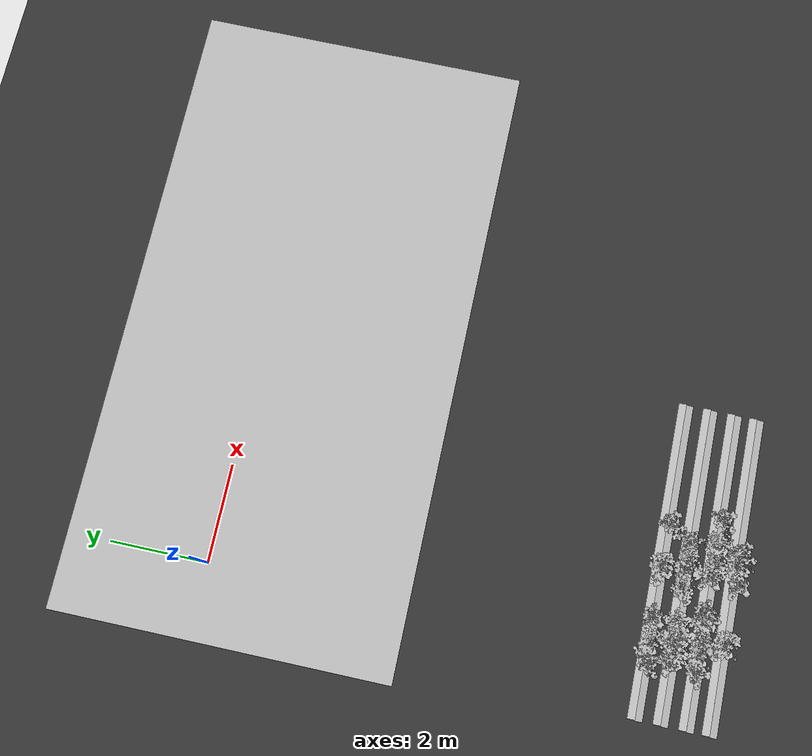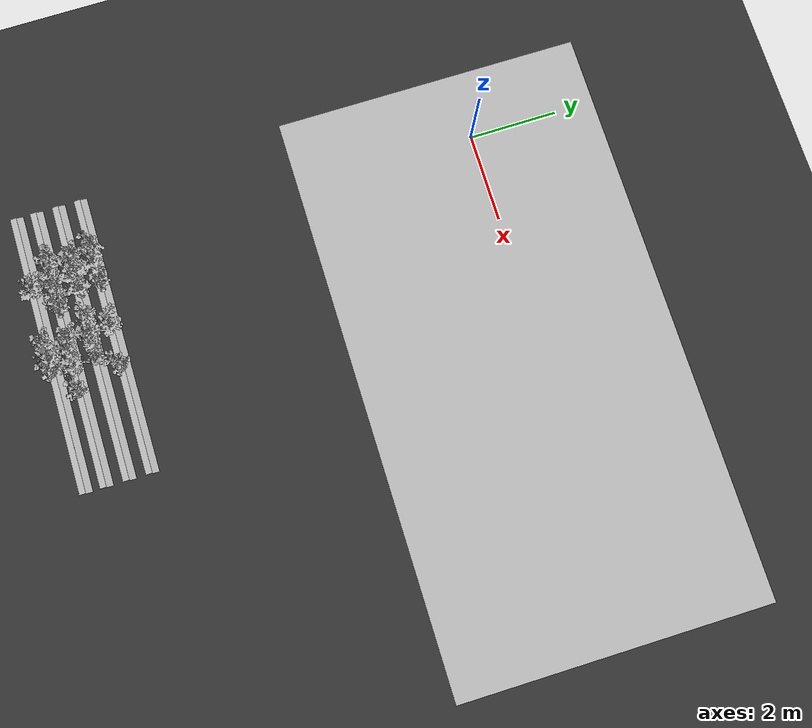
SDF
<sdf version="1.7">
 <world name="default">
  <model name="ground_plane">
   <static>1</static>
   <link name="link">
    <collision name="collision">
     <geometry><plane><normal>0 0 1</normal><size>100 100</size></plane></geometry>
     <surface>
      <contact><collide_bitmask>65535</collide_bitmask></contact>
      <friction><ode><mu>100</mu><mu2>50</mu2></ode></friction>
     </surface>
    </collision>
    <visual name="visual">
     <cast_shadows>0</cast_shadows>
     <geometry><plane><normal>0 0 1</normal><size>100 100</size></plane></geometry>
     <material>
      <ambient>0.2 0.2 0.2 1.0</ambient>
      <diffuse>0.2 0.2 0.2 1.0</diffuse>
      <specular>0.2 0.2 0.2 1.0</specular>
      <emissive>0.2 0.2 0.2 1.0</emissive>
     </material>
    </visual>
   </link>
  </model>
  <model name="ground">
   <pose>5 -0.5 0.01  3.141592654 0 0</pose>
   <static>true</static>
   <link name="body">
    <visual name="visual">
     <cast_shadows>0</cast_shadows>
     <geometry>
      <mesh><uri>file:///home/ifcosta/catkin_ws/src/cnn_line/worlds/models/ground.obj</uri></mesh>
     </geometry>
    </visual>
   </link>
  </model>
  <model name="plt_30002">
   <pose>0.57 -10.2 0.0132 0.0 0.0 -0.59547</pose>
   <static>true</static>
   <link name="body">
    <visual name="visual">
     <geometry>
      <mesh><uri>file:///home/ifcosta/catkin_ws/src/cnn_line/worlds/models/plant30.obj</uri></mesh>
     </geometry>
    </visual>
   </link>
  </model>
  <model name="plt_30006">
   <pose>1.82 -10.3 0.0144 0.0 0.0 0.010769</pose>
   <static>true</static>
   <link name="body">
    <visual name="visual">
     <geometry>
      <mesh><uri>file:///home/ifcosta/catkin_ws/src/cnn_line/worlds/models/plant33.obj</uri></mesh>
     </geometry>
    </visual>
   </link>
  </model>
  <model name="plt_30007">
   <pose>2.12 -10.2 0.0155 0.0 0.0 0.10091</pose>
   <static>true</static>
   <link name="body">
    <visual name="visual">
     <geometry>
      <mesh><uri>file:///home/ifcosta/catkin_ws/src/cnn_line/worlds/models/plant30.obj</uri></mesh>
     </geometry>
    </visual>
   </link>
  </model>
  <model name="plt_30008">
   <pose>2.41 -10.2 0.0153 0.0 0.0 1.6546</pose>
   <static>true</static>
   <link name="body">
    <visual name="visual">
     <geometry>
      <mesh><uri>file:///home/ifcosta/catkin_ws/src/cnn_line/worlds/models/plant33.obj</uri></mesh>
     </geometry>
    </visual>
   </link>
  </model>
  <model name="slope_1434">
   <pose>2.0 -10.2 -0.005 0.0 0.0 0.0</pose>
   <static>true</static>
   <link name="body">
    <visual name="visual">
     <geometry>
      <mesh><uri>file:///home/ifcosta/catkin_ws/src/cnn_line/worlds/models/slope.obj</uri></mesh>
     </geometry>
    </visual>
   </link>
  </model>
  <model name="slope_1534">
   <pose>2.0 -10.2 -0.005 0.0 0.0 3.1416</pose>
   <static>true</static>
   <link name="body">
    <visual name="visual">
     <geometry>
      <mesh><uri>file:///home/ifcosta/catkin_ws/src/cnn_line/worlds/models/slope.obj</uri></mesh>
     </geometry>
    </visual>
   </link>
  </model>
  <model name="plt_30034">
   <pose>0.0405 -9.73 0.0151 0.0 0.0 -1.1142</pose>
   <static>true</static>
   <link name="body">
    <visual name="visual">
     <geometry>
      <mesh><uri>file:///home/ifcosta/catkin_ws/src/cnn_line/worlds/models/plant34.obj</uri></mesh>
     </geometry>
    </visual>
   </link>
  </model>
  <model name="plt_30035">
   <pose>0.297 -9.74 0.019 0.0 0.0 0.044568</pose>
   <static>true</static>
   <link name="body">
    <visual name="visual">
     <geometry>
      <mesh><uri>file:///home/ifcosta/catkin_ws/src/cnn_line/worlds/models/plant36.obj</uri></mesh>
     </geometry>
    </visual>
   </link>
  </model>
  <model name="plt_30036">
   <pose>0.611 -9.71 0.0138 0.0 0.0 0.39784</pose>
   <static>true</static>
   <link name="body">
    <visual name="visual">
     <geometry>
      <mesh><uri>file:///home/ifcosta/catkin_ws/src/cnn_line/worlds/models/plant34.obj</uri></mesh>
     </geometry>
    </visual>
   </link>
  </model>
  <model name="plt_30037">
   <pose>0.934 -9.77 0.0124 0.0 0.0 -0.94922</pose>
   <static>true</static>
   <link name="body">
    <visual name="visual">
     <geometry>
      <mesh><uri>file:///home/ifcosta/catkin_ws/src/cnn_line/worlds/models/plant35.obj</uri></mesh>
     </geometry>
    </visual>
   </link>
  </model>
  <model name="plt_30038">
   <pose>1.16 -9.74 0.014 0.0 0.0 -1.868</pose>
   <static>true</static>
   <link name="body">
    <visual name="visual">
     <geometry>
      <mesh><uri>file:///home/ifcosta/catkin_ws/src/cnn_line/worlds/models/plant34.obj</uri></mesh>
     </geometry>
    </visual>
   </link>
  </model>
  <model name="plt_30040">
   <pose>1.84 -9.77 0.0124 0.0 0.0 -0.25344</pose>
   <static>true</static>
   <link name="body">
    <visual name="visual">
     <geometry>
      <mesh><uri>file:///home/ifcosta/catkin_ws/src/cnn_line/worlds/models/plant33.obj</uri></mesh>
     </geometry>
    </visual>
   </link>
  </model>
  <model name="plt_30041">
   <pose>2.08 -9.81 0.0134 0.0 0.0 0.042415</pose>
   <static>true</static>
   <link name="body">
    <visual name="visual">
     <geometry>
      <mesh><uri>file:///home/ifcosta/catkin_ws/src/cnn_line/worlds/models/plant31.obj</uri></mesh>
     </geometry>
    </visual>
   </link>
  </model>
  <model name="plt_30042">
   <pose>2.44 -9.77 0.0154 0.0 0.0 -0.043431</pose>
   <static>true</static>
   <link name="body">
    <visual name="visual">
     <geometry>
      <mesh><uri>file:///home/ifcosta/catkin_ws/src/cnn_line/worlds/models/plant32.obj</uri></mesh>
     </geometry>
    </visual>
   </link>
  </model>
  <model name="plt_30044">
   <pose>3.02 -9.76 0.0167 0.0 0.0 -0.41512</pose>
   <static>true</static>
   <link name="body">
    <visual name="visual">
     <geometry>
      <mesh><uri>file:///home/ifcosta/catkin_ws/src/cnn_line/worlds/models/plant34.obj</uri></mesh>
     </geometry>
    </visual>
   </link>
  </model>
  <model name="slope_1468">
   <pose>2.0 -9.75 -0.005 0.0 0.0 0.0</pose>
   <static>true</static>
   <link name="body">
    <visual name="visual">
     <geometry>
      <mesh><uri>file:///home/ifcosta/catkin_ws/src/cnn_line/worlds/models/slope.obj</uri></mesh>
     </geometry>
    </visual>
   </link>
  </model>
  <model name="slope_1568">
   <pose>2.0 -9.75 -0.005 0.0 0.0 3.1416</pose>
   <static>true</static>
   <link name="body">
    <visual name="visual">
     <geometry>
      <mesh><uri>file:///home/ifcosta/catkin_ws/src/cnn_line/worlds/models/slope.obj</uri></mesh>
     </geometry>
    </visual>
   </link>
  </model>
  <model name="plt_30068">
   <pose>0.0357 -9.23 0.0153 0.0 0.0 -1.1331</pose>
   <static>true</static>
   <link name="body">
    <visual name="visual">
     <geometry>
      <mesh><uri>file:///home/ifcosta/catkin_ws/src/cnn_line/worlds/models/plant33.obj</uri></mesh>
     </geometry>
    </visual>
   </link>
  </model>
  <model name="plt_30069">
   <pose>0.307 -9.26 0.015 0.0 0.0 0.32687</pose>
   <static>true</static>
   <link name="body">
    <visual name="visual">
     <geometry>
      <mesh><uri>file:///home/ifcosta/catkin_ws/src/cnn_line/worlds/models/plant30.obj</uri></mesh>
     </geometry>
    </visual>
   </link>
  </model>
  <model name="plt_30070">
   <pose>0.559 -9.24 0.0151 0.0 0.0 1.7752</pose>
   <static>true</static>
   <link name="body">
    <visual name="visual">
     <geometry>
      <mesh><uri>file:///home/ifcosta/catkin_ws/src/cnn_line/worlds/models/plant30.obj</uri></mesh>
     </geometry>
    </visual>
   </link>
  </model>
  <model name="plt_30071">
   <pose>0.858 -9.2 0.0126 0.0 0.0 1.2072</pose>
   <static>true</static>
   <link name="body">
    <visual name="visual">
     <geometry>
      <mesh><uri>file:///home/ifcosta/catkin_ws/src/cnn_line/worlds/models/plant31.obj</uri></mesh>
     </geometry>
    </visual>
   </link>
  </model>
  <model name="plt_30073">
   <pose>1.47 -9.22 0.0157 0.0 0.0 0.015678</pose>
   <static>true</static>
   <link name="body">
    <visual name="visual">
     <geometry>
      <mesh><uri>file:///home/ifcosta/catkin_ws/src/cnn_line/worlds/models/plant31.obj</uri></mesh>
     </geometry>
    </visual>
   </link>
  </model>
  <model name="plt_30074">
   <pose>1.83 -9.24 0.0153 0.0 0.0 -0.87403</pose>
   <static>true</static>
   <link name="body">
    <visual name="visual">
     <geometry>
      <mesh><uri>file:///home/ifcosta/catkin_ws/src/cnn_line/worlds/models/plant36.obj</uri></mesh>
     </geometry>
    </visual>
   </link>
  </model>
  <model name="plt_30075">
   <pose>2.05 -9.25 0.0147 0.0 0.0 -0.89679</pose>
   <static>true</static>
   <link name="body">
    <visual name="visual">
     <geometry>
      <mesh><uri>file:///home/ifcosta/catkin_ws/src/cnn_line/worlds/models/plant31.obj</uri></mesh>
     </geometry>
    </visual>
   </link>
  </model>
  <model name="plt_30076">
   <pose>2.4 -9.26 0.012 0.0 0.0 -1.2348</pose>
   <static>true</static>
   <link name="body">
    <visual name="visual">
     <geometry>
      <mesh><uri>file:///home/ifcosta/catkin_ws/src/cnn_line/worlds/models/plant33.obj</uri></mesh>
     </geometry>
    </visual>
   </link>
  </model>
  <model name="slope_1502">
   <pose>2.0 -9.25 -0.005 0.0 0.0 0.0</pose>
   <static>true</static>
   <link name="body">
    <visual name="visual">
     <geometry>
      <mesh><uri>file:///home/ifcosta/catkin_ws/src/cnn_line/worlds/models/slope.obj</uri></mesh>
     </geometry>
    </visual>
   </link>
  </model>
  <model name="slope_1602">
   <pose>2.0 -9.25 -0.005 0.0 0.0 3.1416</pose>
   <static>true</static>
   <link name="body">
    <visual name="visual">
     <geometry>
      <mesh><uri>file:///home/ifcosta/catkin_ws/src/cnn_line/worlds/models/slope.obj</uri></mesh>
     </geometry>
    </visual>
   </link>
  </model>
  <model name="plt_30102">
   <pose>-0.0036 -8.74 0.0161 0.0 0.0 1.1225</pose>
   <static>true</static>
   <link name="body">
    <visual name="visual">
     <geometry>
      <mesh><uri>file:///home/ifcosta/catkin_ws/src/cnn_line/worlds/models/plant33.obj</uri></mesh>
     </geometry>
    </visual>
   </link>
  </model>
  <model name="plt_30103">
   <pose>0.327 -8.79 0.0177 0.0 0.0 -0.10334</pose>
   <static>true</static>
   <link name="body">
    <visual name="visual">
     <geometry>
      <mesh><uri>file:///home/ifcosta/catkin_ws/src/cnn_line/worlds/models/plant36.obj</uri></mesh>
     </geometry>
    </visual>
   </link>
  </model>
  <model name="plt_30105">
   <pose>0.88 -8.75 0.0171 0.0 0.0 0.02123</pose>
   <static>true</static>
   <link name="body">
    <visual name="visual">
     <geometry>
      <mesh><uri>file:///home/ifcosta/catkin_ws/src/cnn_line/worlds/models/plant33.obj</uri></mesh>
     </geometry>
    </visual>
   </link>
  </model>
  <model name="plt_30108">
   <pose>1.8 -8.76 0.0135 0.0 0.0 -0.16802</pose>
   <static>true</static>
   <link name="body">
    <visual name="visual">
     <geometry>
      <mesh><uri>file:///home/ifcosta/catkin_ws/src/cnn_line/worlds/models/plant30.obj</uri></mesh>
     </geometry>
    </visual>
   </link>
  </model>
  <model name="plt_30111">
   <pose>2.71 -8.75 0.0155 0.0 0.0 0.06503</pose>
   <static>true</static>
   <link name="body">
    <visual name="visual">
     <geometry>
      <mesh><uri>file:///home/ifcosta/catkin_ws/src/cnn_line/worlds/models/plant34.obj</uri></mesh>
     </geometry>
    </visual>
   </link>
  </model>
  <model name="slope_1536">
   <pose>2.0 -8.75 -0.005 0.0 0.0 0.0</pose>
   <static>true</static>
   <link name="body">
    <visual name="visual">
     <geometry>
      <mesh><uri>file:///home/ifcosta/catkin_ws/src/cnn_line/worlds/models/slope.obj</uri></mesh>
     </geometry>
    </visual>
   </link>
  </model>
  <model name="slope_1636">
   <pose>2.0 -8.75 -0.005 0.0 0.0 3.1416</pose>
   <static>true</static>
   <link name="body">
    <visual name="visual">
     <geometry>
      <mesh><uri>file:///home/ifcosta/catkin_ws/src/cnn_line/worlds/models/slope.obj</uri></mesh>
     </geometry>
    </visual>
   </link>
  </model>
 </world>
</sdf>
